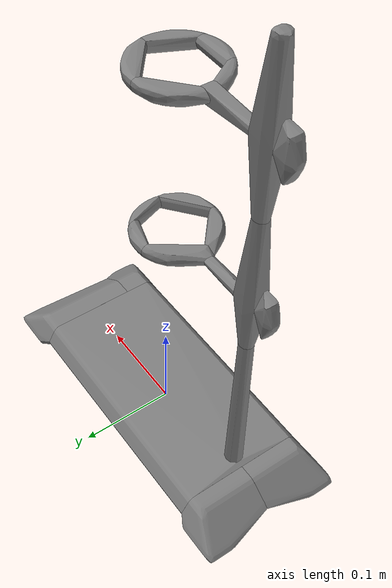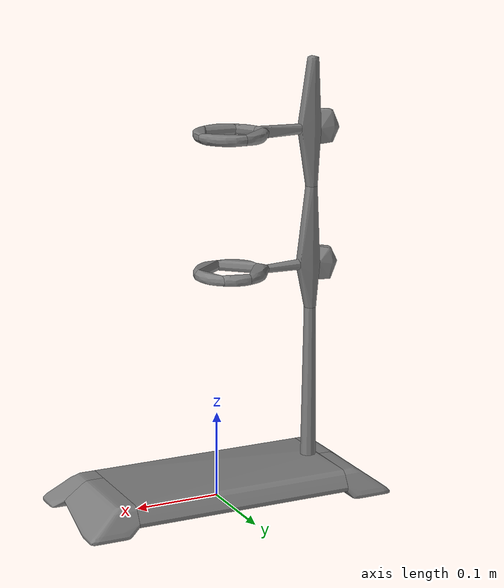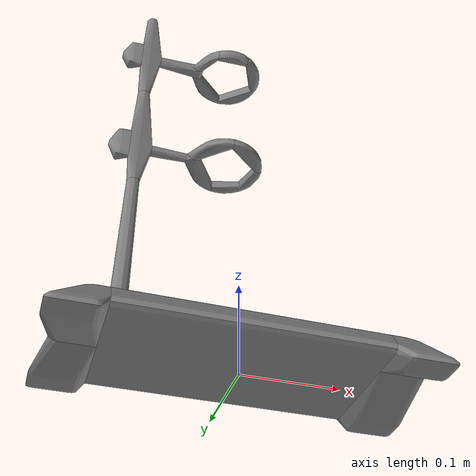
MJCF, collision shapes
<?xml version="1.0" ?>
<mujoco model="universal_support">
  <asset>
    <texture type="2d" name="material_0" file="material_0.png"/>
    <material name="material_0" texture="material_0" specular="0.4000000000000001" shininess="0.001"/>
    <mesh file="universal_support.obj" scale="0.253 0.253 0.253"/>
    <mesh file="universal_support/universal_support_collision_0.obj" scale="0.253 0.253 0.253"/>
    <mesh file="universal_support/universal_support_collision_1.obj" scale="0.253 0.253 0.253"/>
    <mesh file="universal_support/universal_support_collision_2.obj" scale="0.253 0.253 0.253"/>
    <mesh file="universal_support/universal_support_collision_3.obj" scale="0.253 0.253 0.253"/>
    <mesh file="universal_support/universal_support_collision_4.obj" scale="0.253 0.253 0.253"/>
    <mesh file="universal_support/universal_support_collision_5.obj" scale="0.253 0.253 0.253"/>
    <mesh file="universal_support/universal_support_collision_6.obj" scale="0.253 0.253 0.253"/>
    <mesh file="universal_support/universal_support_collision_7.obj" scale="0.253 0.253 0.253"/>
    <mesh file="universal_support/universal_support_collision_8.obj" scale="0.253 0.253 0.253"/>
    <mesh file="universal_support/universal_support_collision_9.obj" scale="0.253 0.253 0.253"/>
    <mesh file="universal_support/universal_support_collision_10.obj" scale="0.253 0.253 0.253"/>
    <mesh file="universal_support/universal_support_collision_11.obj" scale="0.253 0.253 0.253"/>
    <mesh file="universal_support/universal_support_collision_12.obj" scale="0.253 0.253 0.253"/>
    <mesh file="universal_support/universal_support_collision_13.obj" scale="0.253 0.253 0.253"/>
    <mesh file="universal_support/universal_support_collision_14.obj" scale="0.253 0.253 0.253"/>
    <mesh file="universal_support/universal_support_collision_15.obj" scale="0.253 0.253 0.253"/>
    <mesh file="universal_support/universal_support_collision_16.obj" scale="0.253 0.253 0.253"/>
    <mesh file="universal_support/universal_support_collision_17.obj" scale="0.253 0.253 0.253"/>
    <mesh file="universal_support/universal_support_collision_18.obj" scale="0.253 0.253 0.253"/>
    <mesh file="universal_support/universal_support_collision_19.obj" scale="0.253 0.253 0.253"/>
    <mesh file="universal_support/universal_support_collision_20.obj" scale="0.253 0.253 0.253"/>
    <mesh file="universal_support/universal_support_collision_21.obj" scale="0.253 0.253 0.253"/>
  </asset>
  <worldbody>
    <body name="universal_support">
      <inertial pos="0 0 0.1750" mass="0.02" diaginertia="0.0008 0.0008 0.0005"/>
      <geom material="material_0" mesh="universal_support" class="visual"/>
      <geom mesh="universal_support_collision_0" class="collision"/>
      <geom mesh="universal_support_collision_1" class="collision"/>
      <geom mesh="universal_support_collision_2" class="collision"/>
      <geom mesh="universal_support_collision_3" class="collision"/>
      <geom mesh="universal_support_collision_4" class="collision"/>
      <geom mesh="universal_support_collision_5" class="collision"/>
      <geom mesh="universal_support_collision_6" class="collision"/>
      <geom mesh="universal_support_collision_7" class="collision"/>
      <geom mesh="universal_support_collision_8" class="collision"/>
      <geom mesh="universal_support_collision_9" class="collision"/>
      <geom mesh="universal_support_collision_10" class="collision"/>
      <geom mesh="universal_support_collision_11" class="collision"/>
      <geom mesh="universal_support_collision_12" class="collision"/>
      <geom mesh="universal_support_collision_13" class="collision"/>
      <geom mesh="universal_support_collision_14" class="collision"/>
      <geom mesh="universal_support_collision_15" class="collision"/>
      <geom mesh="universal_support_collision_16" class="collision"/>
      <geom mesh="universal_support_collision_17" class="collision"/>
      <geom mesh="universal_support_collision_18" class="collision"/>
      <geom mesh="universal_support_collision_19" class="collision"/>
      <geom mesh="universal_support_collision_20" class="collision"/>
      <geom mesh="universal_support_collision_21" class="collision"/>
      <!-- Keypoints for bounding box -->
      <site class="keypoint" pos="-0.185 -0.077 0.0000"/>
      <site class="keypoint" pos="0.185 0.077 0.0000"/>
      <site class="keypoint" pos="-0.185 0.077 0.0000"/>
      <site class="keypoint" pos="0.185 -0.077 0.0000"/>
      <!-- Funnel placement position on the ring (at ~70% height = 0.35m) -->
      <site class="placepoint" pos="-0.02 0.008 0.12" name="funnel_ring"/>
</body>
  </worldbody>
  <compiler boundmass="0.015" boundinertia="1e-05" angle="radian"/>
  <default>
    <default class="visual">
      <geom group="2" type="mesh" contype="0" conaffinity="0" density="50"/>
    </default>
    <default class="collision">
      <geom group="3" type="mesh" density="50" friction="1.5 0.1 0.1" solimp="0.9 0.95 0.001" solref="0.02 1"/>
    </default>
    <default class="grasppoint">
      <site type="sphere" size="0.005" group="4" rgba="0 0 1 1"/>
    </default>
    <default class="keypoint">
      <site type="sphere" size="0.01" group="3" rgba="1 0 0 1"/>
    </default>
    <default class="placepoint">
      <site type="sphere" size="0.01" group="2" rgba="0 0 1 0"/>
    </default>
  </default>
</mujoco>
